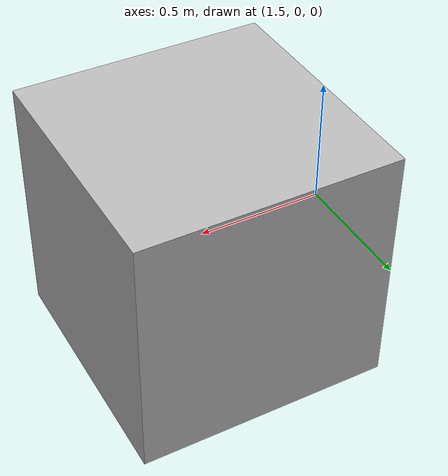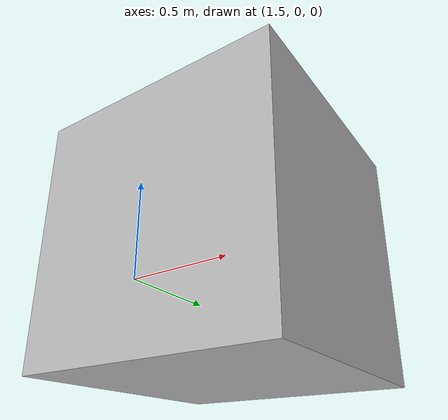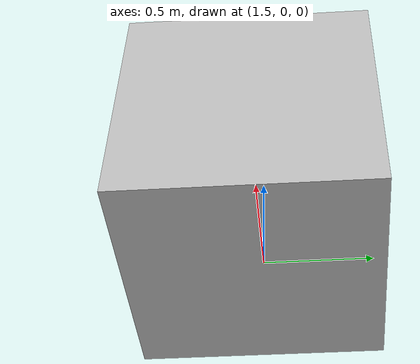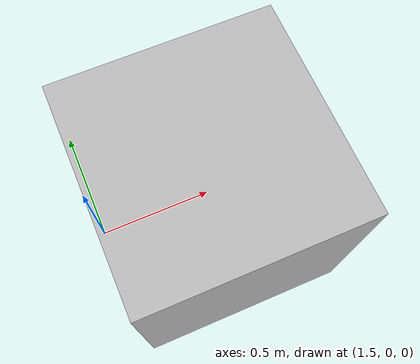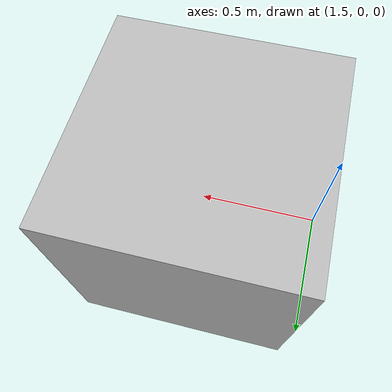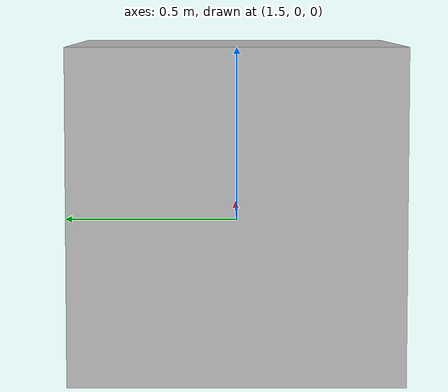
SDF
<?xml version="1.0"?>
<sdf version="1.4">
  <model name="aruco_box">
    <pose>2 0 0 0 0 0</pose>
    <link name="box_link">
      <collision name="box_collision">
        <geometry>
          <box>
            <size>1 1 1</size>
          </box>
        </geometry>
      </collision>
      <visual name="box_visual">
        <geometry>
          <box>
            <size>1 1 1</size>
          </box>
        </geometry>
        <material>
          <script>
            <uri>model://aruco_box/materials/scripts</uri>
            <uri>model://aruco_box/materials/textures</uri>
            <name>MyMaterial</name>
          </script>
        </material>
      </visual>
    </link>
  </model>
</sdf>
